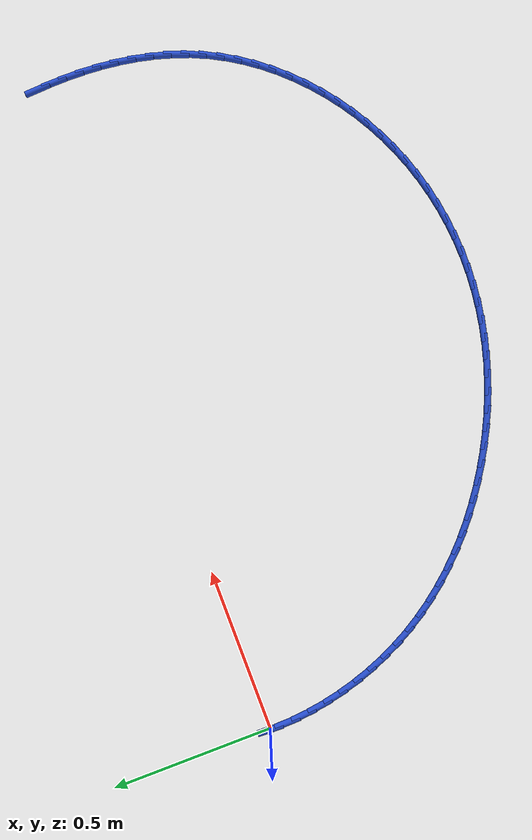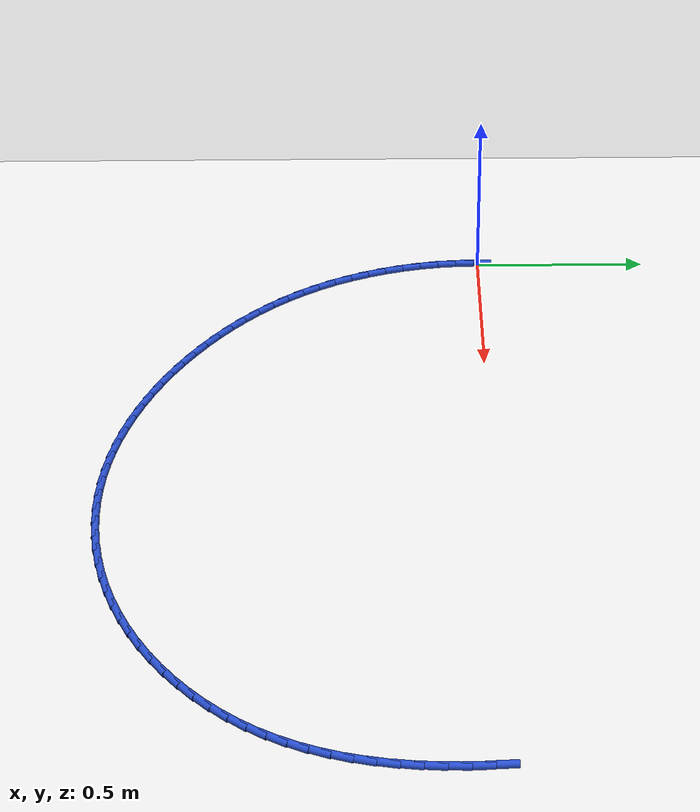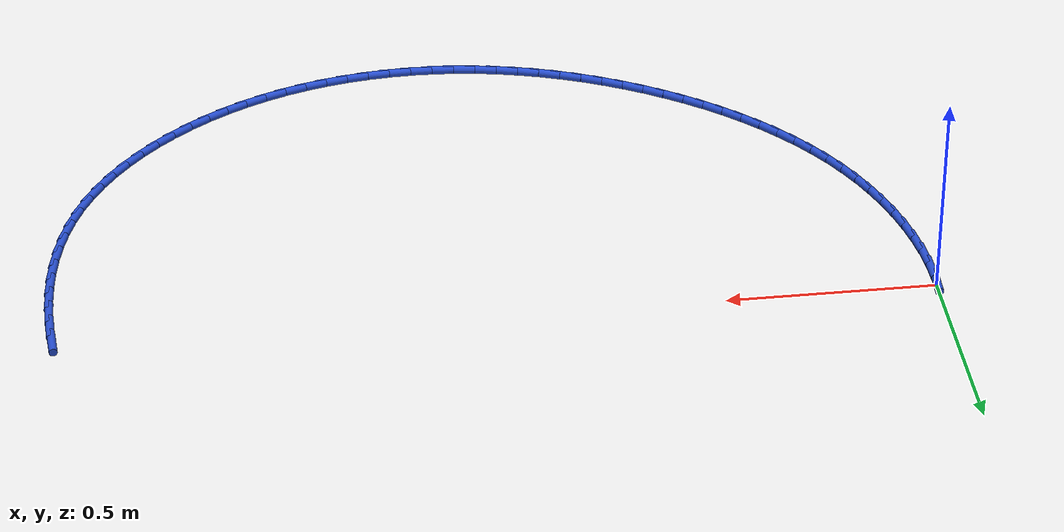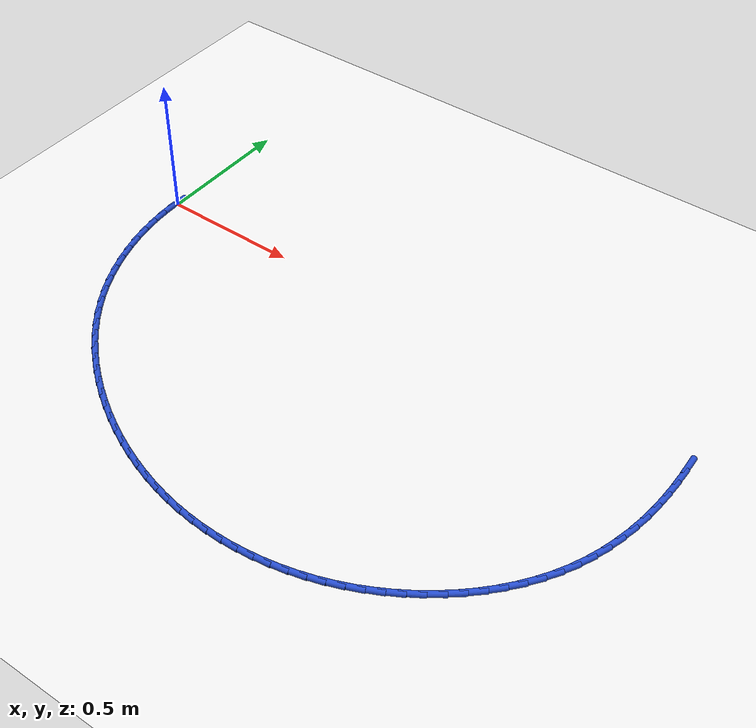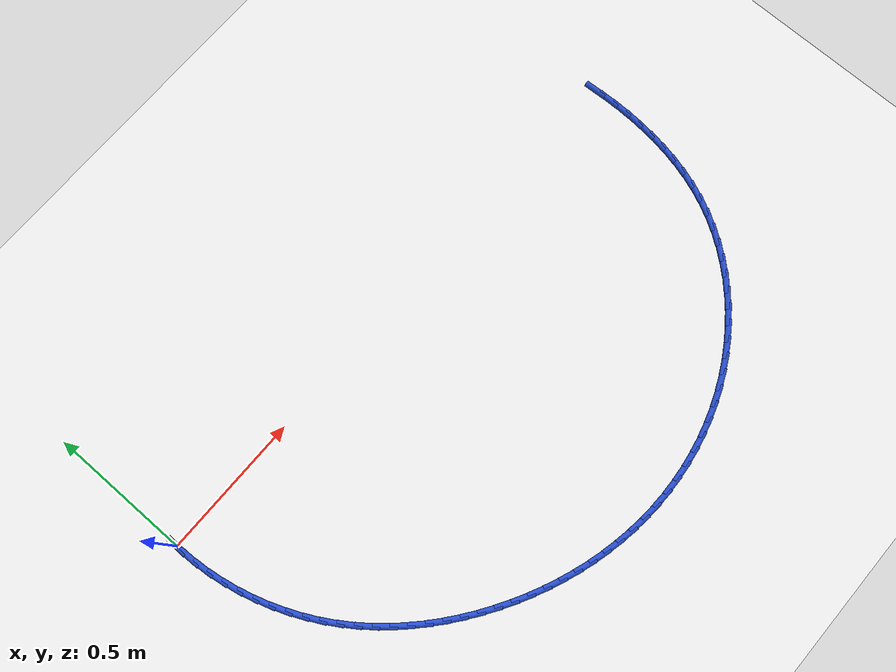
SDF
<sdf version="1.6">
 <world name="default">
  <model name="ground_plane">
   <static>1</static>
   <link name="link">
    <collision name="collision">
     <geometry><plane><normal>0 0 1</normal><size>100 100</size></plane></geometry>
     <surface><friction><ode><mu>100</mu><mu2>50</mu2></ode></friction></surface>
    </collision>
    <visual name="visual">
     <cast_shadows>0</cast_shadows>
     <geometry><plane><normal>0 0 1</normal><size>100 100</size></plane></geometry>
     <material>
      <script><uri>file://media/materials/scripts/gazebo.material</uri><name>Gazebo/WhiteGlow</name></script>
     </material>
    </visual>
   </link>
  </model>
  <model name="line">
   <link name="link_60">
    <pose>2.0639521369654563 -0.022828106876039908 0.01 0 1.57 -1.5217995421344748</pose>
    <collision name="collision">
     <geometry><cylinder><radius>0.01</radius><length>0.08</length></cylinder></geometry>
    </collision>
    <visual name="visual">
     <material>
      <script><name>Gazebo/Blue</name><uri>file://media/materials/scripts/gazebo.material</uri></script>
     </material>
     <geometry><cylinder><radius>0.01</radius><length>0.08</length></cylinder></geometry>
    </visual>
   </link>
   <link name="link_61">
    <pose>2.066658352704501 -0.07801641812311876 0.01 0 1.57 -1.5615450391501537</pose>
    <collision name="collision">
     <geometry><cylinder><radius>0.01</radius><length>0.08</length></cylinder></geometry>
    </collision>
    <visual name="visual">
     <material>
      <script><name>Gazebo/Blue</name><uri>file://media/materials/scripts/gazebo.material</uri></script>
     </material>
     <geometry><cylinder><radius>0.01</radius><length>0.08</length></cylinder></geometry>
    </visual>
   </link>
   <link name="link_62">
    <pose>2.067170182742487 -0.13334011528539383 0.01 0 1.57 1.5375343882589414</pose>
    <collision name="collision">
     <geometry><cylinder><radius>0.01</radius><length>0.08</length></cylinder></geometry>
    </collision>
    <visual name="visual">
     <material>
      <script><name>Gazebo/Blue</name><uri>file://media/materials/scripts/gazebo.material</uri></script>
     </material>
     <geometry><cylinder><radius>0.01</radius><length>0.08</length></cylinder></geometry>
    </visual>
   </link>
   <link name="link_63">
    <pose>2.0653314518313457 -0.18860005636797023 0.01 0 1.57 1.4919473986028025</pose>
    <collision name="collision">
     <geometry><cylinder><radius>0.01</radius><length>0.08</length></cylinder></geometry>
    </collision>
    <visual name="visual">
     <material>
      <script><name>Gazebo/Blue</name><uri>file://media/materials/scripts/gazebo.material</uri></script>
     </material>
     <geometry><cylinder><radius>0.01</radius><length>0.08</length></cylinder></geometry>
    </visual>
   </link>
   <link name="link_64">
    <pose>2.0609859847230103 -0.24359709937595045 0.01 0 1.57 1.442985299147442</pose>
    <collision name="collision">
     <geometry><cylinder><radius>0.01</radius><length>0.08</length></cylinder></geometry>
    </collision>
    <visual name="visual">
     <material>
      <script><name>Gazebo/Blue</name><uri>file://media/materials/scripts/gazebo.material</uri></script>
     </material>
     <geometry><cylinder><radius>0.01</radius><length>0.08</length></cylinder></geometry>
    </visual>
   </link>
   <link name="link_65">
    <pose>2.0539776061694153 -0.2981321023144396 0.01 0 1.57 1.3903638705153891</pose>
    <collision name="collision">
     <geometry><cylinder><radius>0.01</radius><length>0.08</length></cylinder></geometry>
    </collision>
    <visual name="visual">
     <material>
      <script><name>Gazebo/Blue</name><uri>file://media/materials/scripts/gazebo.material</uri></script>
     </material>
     <geometry><cylinder><radius>0.01</radius><length>0.08</length></cylinder></geometry>
    </visual>
   </link>
   <link name="link_66">
    <pose>2.0441501409224916 -0.3520059231885426 0.01 0 1.57 1.3338340996122688</pose>
    <collision name="collision">
     <geometry><cylinder><radius>0.01</radius><length>0.08</length></cylinder></geometry>
    </collision>
    <visual name="visual">
     <material>
      <script><name>Gazebo/Blue</name><uri>file://media/materials/scripts/gazebo.material</uri></script>
     </material>
     <geometry><cylinder><radius>0.01</radius><length>0.08</length></cylinder></geometry>
    </visual>
   </link>
   <link name="link_67">
    <pose>2.0313474137341747 -0.4050194200033624 0.01 0 1.57 1.273206542059458</pose>
    <collision name="collision">
     <geometry><cylinder><radius>0.01</radius><length>0.08</length></cylinder></geometry>
    </collision>
    <visual name="visual">
     <material>
      <script><name>Gazebo/Blue</name><uri>file://media/materials/scripts/gazebo.material</uri></script>
     </material>
     <geometry><cylinder><radius>0.01</radius><length>0.08</length></cylinder></geometry>
    </visual>
   </link>
   <link name="link_68">
    <pose>2.0154132493563957 -0.4569734507640036 0.01 0 1.57 1.2083818001034274</pose>
    <collision name="collision">
     <geometry><cylinder><radius>0.01</radius><length>0.08</length></cylinder></geometry>
    </collision>
    <visual name="visual">
     <material>
      <script><name>Gazebo/Blue</name><uri>file://media/materials/scripts/gazebo.material</uri></script>
     </material>
     <geometry><cylinder><radius>0.01</radius><length>0.08</length></cylinder></geometry>
    </visual>
   </link>
   <link name="link_69">
    <pose>1.996191472541089 -0.5076688734755707 0.01 0 1.57 1.1393856421164037</pose>
    <collision name="collision">
     <geometry><cylinder><radius>0.01</radius><length>0.08</length></cylinder></geometry>
    </collision>
    <visual name="visual">
     <material>
      <script><name>Gazebo/Blue</name><uri>file://media/materials/scripts/gazebo.material</uri></script>
     </material>
     <geometry><cylinder><radius>0.01</radius><length>0.08</length></cylinder></geometry>
    </visual>
   </link>
   <link name="link_70">
    <pose>1.9735259170337793 -0.5569065480162398 0.01 0 1.57 1.0677319652294905</pose>
    <collision name="collision">
     <geometry><cylinder><radius>0.01</radius><length>0.08</length></cylinder></geometry>
    </collision>
    <visual name="visual">
     <material>
      <script><name>Gazebo/Blue</name><uri>file://media/materials/scripts/gazebo.material</uri></script>
     </material>
     <geometry><cylinder><radius>0.01</radius><length>0.08</length></cylinder></geometry>
    </visual>
   </link>
   <link name="link_71">
    <pose>1.9473343087804755 -0.6045027235953876 0.01 0 1.57 0.9980854540625889</pose>
    <collision name="collision">
     <geometry><cylinder><radius>0.01</radius><length>0.08</length></cylinder></geometry>
    </collision>
    <visual name="visual">
     <material>
      <script><name>Gazebo/Blue</name><uri>file://media/materials/scripts/gazebo.material</uri></script>
     </material>
     <geometry><cylinder><radius>0.01</radius><length>0.08</length></cylinder></geometry>
    </visual>
   </link>
   <link name="link_72">
    <pose>1.917787263001686 -0.6503263179960358 0.01 0 1.57 0.9312487487370169</pose>
    <collision name="collision">
     <geometry><cylinder><radius>0.01</radius><length>0.08</length></cylinder></geometry>
    </collision>
    <visual name="visual">
     <material>
      <script><name>Gazebo/Blue</name><uri>file://media/materials/scripts/gazebo.material</uri></script>
     </material>
     <geometry><cylinder><radius>0.01</radius><length>0.08</length></cylinder></geometry>
    </visual>
   </link>
   <link name="link_73">
    <pose>1.8851094505059534 -0.6942575070141227 0.01 0 1.57 0.8669564151430771</pose>
    <collision name="collision">
     <geometry><cylinder><radius>0.01</radius><length>0.08</length></cylinder></geometry>
    </collision>
    <visual name="visual">
     <material>
      <script><name>Gazebo/Blue</name><uri>file://media/materials/scripts/gazebo.material</uri></script>
     </material>
     <geometry><cylinder><radius>0.01</radius><length>0.08</length></cylinder></geometry>
    </visual>
   </link>
   <link name="link_74">
    <pose>1.8495255421018204 -0.7361764664455881 0.01 0 1.57 0.8048899736424296</pose>
    <collision name="collision">
     <geometry><cylinder><radius>0.01</radius><length>0.08</length></cylinder></geometry>
    </collision>
    <visual name="visual">
     <material>
      <script><name>Gazebo/Blue</name><uri>file://media/materials/scripts/gazebo.material</uri></script>
     </material>
     <geometry><cylinder><radius>0.01</radius><length>0.08</length></cylinder></geometry>
    </visual>
   </link>
   <link name="link_75">
    <pose>1.8112602085978307 -0.77596337208637 0.01 0 1.57 0.7446951564046369</pose>
    <collision name="collision">
     <geometry><cylinder><radius>0.01</radius><length>0.08</length></cylinder></geometry>
    </collision>
    <visual name="visual">
     <material>
      <script><name>Gazebo/Blue</name><uri>file://media/materials/scripts/gazebo.material</uri></script>
     </material>
     <geometry><cylinder><radius>0.01</radius><length>0.08</length></cylinder></geometry>
    </visual>
   </link>
   <link name="link_76">
    <pose>1.7705381208025255 -0.8134983997324073 0.01 0 1.57 0.6859944633395849</pose>
    <collision name="collision">
     <geometry><cylinder><radius>0.01</radius><length>0.08</length></cylinder></geometry>
    </collision>
    <visual name="visual">
     <material>
      <script><name>Gazebo/Blue</name><uri>file://media/materials/scripts/gazebo.material</uri></script>
     </material>
     <geometry><cylinder><radius>0.01</radius><length>0.08</length></cylinder></geometry>
    </visual>
   </link>
   <link name="link_77">
    <pose>1.727583949524448 -0.8486617251796396 0.01 0 1.57 0.6283956231616549</pose>
    <collision name="collision">
     <geometry><cylinder><radius>0.01</radius><length>0.08</length></cylinder></geometry>
    </collision>
    <visual name="visual">
     <material>
      <script><name>Gazebo/Blue</name><uri>file://media/materials/scripts/gazebo.material</uri></script>
     </material>
     <geometry><cylinder><radius>0.01</radius><length>0.08</length></cylinder></geometry>
    </visual>
   </link>
   <link name="link_78">
    <pose>1.68262236557214 -0.8813335242240057 0.01 0 1.57 0.5714967786450099</pose>
    <collision name="collision">
     <geometry><cylinder><radius>0.01</radius><length>0.08</length></cylinder></geometry>
    </collision>
    <visual name="visual">
     <material>
      <script><name>Gazebo/Blue</name><uri>file://media/materials/scripts/gazebo.material</uri></script>
     </material>
     <geometry><cylinder><radius>0.01</radius><length>0.08</length></cylinder></geometry>
    </visual>
   </link>
   <link name="link_79">
    <pose>1.6358780397541453 -0.9113939726614438 0.01 0 1.57 0.5148892603801294</pose>
    <collision name="collision">
     <geometry><cylinder><radius>0.01</radius><length>0.08</length></cylinder></geometry>
    </collision>
    <visual name="visual">
     <material>
      <script><name>Gazebo/Blue</name><uri>file://media/materials/scripts/gazebo.material</uri></script>
     </material>
     <geometry><cylinder><radius>0.01</radius><length>0.08</length></cylinder></geometry>
    </visual>
   </link>
   <link name="link_80">
    <pose>1.5875756428790062 -0.9387232462878929 0.01 0 1.57 0.4581587871532892</pose>
    <collision name="collision">
     <geometry><cylinder><radius>0.01</radius><length>0.08</length></cylinder></geometry>
    </collision>
    <visual name="visual">
     <material>
      <script><name>Gazebo/Blue</name><uri>file://media/materials/scripts/gazebo.material</uri></script>
     </material>
     <geometry><cylinder><radius>0.01</radius><length>0.08</length></cylinder></geometry>
    </visual>
   </link>
   <link name="link_81">
    <pose>1.5379398457147946 -0.9632015209670387 0.01 0 1.57 0.4011742782482774</pose>
    <collision name="collision">
     <geometry><cylinder><radius>0.01</radius><length>0.08</length></cylinder></geometry>
    </collision>
    <visual name="visual">
     <material>
      <script><name>Gazebo/Blue</name><uri>file://media/materials/scripts/gazebo.material</uri></script>
     </material>
     <geometry><cylinder><radius>0.01</radius><length>0.08</length></cylinder></geometry>
    </visual>
   </link>
   <link name="link_82">
    <pose>1.4871815053550728 -0.9847320969460386 0.01 0 1.57 0.344776268759962</pose>
    <collision name="collision">
     <geometry><cylinder><radius>0.01</radius><length>0.08</length></cylinder></geometry>
    </collision>
    <visual name="visual">
     <material>
      <script><name>Gazebo/Blue</name><uri>file://media/materials/scripts/gazebo.material</uri></script>
     </material>
     <geometry><cylinder><radius>0.01</radius><length>0.08</length></cylinder></geometry>
    </visual>
   </link>
   <link name="link_83">
    <pose>1.4354585782850864 -1.0033068312098983 0.01 0 1.57 0.28917274510251023</pose>
    <collision name="collision">
     <geometry><cylinder><radius>0.01</radius><length>0.08</length></cylinder></geometry>
    </collision>
    <visual name="visual">
     <material>
      <script><name>Gazebo/Blue</name><uri>file://media/materials/scripts/gazebo.material</uri></script>
     </material>
     <geometry><cylinder><radius>0.01</radius><length>0.08</length></cylinder></geometry>
    </visual>
   </link>
   <link name="link_84">
    <pose>1.3829163594929013 -1.0189387763578586 0.01 0 1.57 0.23430649543763804</pose>
    <collision name="collision">
     <geometry><cylinder><radius>0.01</radius><length>0.08</length></cylinder></geometry>
    </collision>
    <visual name="visual">
     <material>
      <script><name>Gazebo/Blue</name><uri>file://media/materials/scripts/gazebo.material</uri></script>
     </material>
     <geometry><cylinder><radius>0.01</radius><length>0.08</length></cylinder></geometry>
    </visual>
   </link>
   <link name="link_85">
    <pose>1.329700143966582 -1.0316409849891601 0.01 0 1.57 0.18010062801760457</pose>
    <collision name="collision">
     <geometry><cylinder><radius>0.01</radius><length>0.08</length></cylinder></geometry>
    </collision>
    <visual name="visual">
     <material>
      <script><name>Gazebo/Blue</name><uri>file://media/materials/scripts/gazebo.material</uri></script>
     </material>
     <geometry><cylinder><radius>0.01</radius><length>0.08</length></cylinder></geometry>
    </visual>
   </link>
   <link name="link_86">
    <pose>1.275955226694196 -1.0414265097030437 0.01 0 1.57 0.12646184584467754</pose>
    <collision name="collision">
     <geometry><cylinder><radius>0.01</radius><length>0.08</length></cylinder></geometry>
    </collision>
    <visual name="visual">
     <material>
      <script><name>Gazebo/Blue</name><uri>file://media/materials/scripts/gazebo.material</uri></script>
     </material>
     <geometry><cylinder><radius>0.01</radius><length>0.08</length></cylinder></geometry>
    </visual>
   </link>
   <link name="link_87">
    <pose>1.2218269026638082 -1.0483084030987506 0.01 0 1.57 0.07328357952338349</pose>
    <collision name="collision">
     <geometry><cylinder><radius>0.01</radius><length>0.08</length></cylinder></geometry>
    </collision>
    <visual name="visual">
     <material>
      <script><name>Gazebo/Blue</name><uri>file://media/materials/scripts/gazebo.material</uri></script>
     </material>
     <geometry><cylinder><radius>0.01</radius><length>0.08</length></cylinder></geometry>
    </visual>
   </link>
   <link name="link_88">
    <pose>1.1674604668634834 -1.0522997177755202 0.01 0 1.57 0.02044892746733857</pose>
    <collision name="collision">
     <geometry><cylinder><radius>0.01</radius><length>0.08</length></cylinder></geometry>
    </collision>
    <visual name="visual">
     <material>
      <script><name>Gazebo/Blue</name><uri>file://media/materials/scripts/gazebo.material</uri></script>
     </material>
     <geometry><cylinder><radius>0.01</radius><length>0.08</length></cylinder></geometry>
    </visual>
   </link>
   <link name="link_89">
    <pose>1.1130012142812875 -1.0534135063325945 0.01 0 1.57 -0.032166603078090016</pose>
    <collision name="collision">
     <geometry><cylinder><radius>0.01</radius><length>0.08</length></cylinder></geometry>
    </collision>
    <visual name="visual">
     <material>
      <script><name>Gazebo/Blue</name><uri>file://media/materials/scripts/gazebo.material</uri></script>
     </material>
     <geometry><cylinder><radius>0.01</radius><length>0.08</length></cylinder></geometry>
    </visual>
   </link>
   <link name="link_90">
    <pose>1.0585944399052871 -1.0516628213692136 0.01 0 1.57 -0.08454719859882719</pose>
    <collision name="collision">
     <geometry><cylinder><radius>0.01</radius><length>0.08</length></cylinder></geometry>
    </collision>
    <visual name="visual">
     <material>
      <script><name>Gazebo/Blue</name><uri>file://media/materials/scripts/gazebo.material</uri></script>
     </material>
     <geometry><cylinder><radius>0.01</radius><length>0.08</length></cylinder></geometry>
    </visual>
   </link>
   <link name="link_91">
    <pose>1.0043801399297079 -1.0470682011627552 0.01 0 1.57 -0.1358823271964727</pose>
    <collision name="collision">
     <geometry><cylinder><radius>0.01</radius><length>0.08</length></cylinder></geometry>
    </collision>
    <visual name="visual">
     <material>
      <script><name>Gazebo/Blue</name><uri>file://media/materials/scripts/gazebo.material</uri></script>
     </material>
     <geometry><cylinder><radius>0.01</radius><length>0.08</length></cylinder></geometry>
    </visual>
   </link>
   <link name="link_92">
    <pose>0.9504653750465438 -1.039696712422619 0.01 0 1.57 -0.1858585333099371</pose>
    <collision name="collision">
     <geometry><cylinder><radius>0.01</radius><length>0.08</length></cylinder></geometry>
    </collision>
    <visual name="visual">
     <material>
      <script><name>Gazebo/Blue</name><uri>file://media/materials/scripts/gazebo.material</uri></script>
     </material>
     <geometry><cylinder><radius>0.01</radius><length>0.08</length></cylinder></geometry>
    </visual>
   </link>
   <link name="link_93">
    <pose>0.8969445710038078 -1.0296332714154395 0.01 0 1.57 -0.23452228375335954</pose>
    <collision name="collision">
     <geometry><cylinder><radius>0.01</radius><length>0.08</length></cylinder></geometry>
    </collision>
    <visual name="visual">
     <material>
      <script><name>Gazebo/Blue</name><uri>file://media/materials/scripts/gazebo.material</uri></script>
     </material>
     <geometry><cylinder><radius>0.01</radius><length>0.08</length></cylinder></geometry>
    </visual>
   </link>
   <link name="link_94">
    <pose>0.8439121276027212 -1.0169628310632393 0.01 0 1.57 -0.28194221446784995</pose>
    <collision name="collision">
     <geometry><cylinder><radius>0.01</radius><length>0.08</length></cylinder></geometry>
    </collision>
    <visual name="visual">
     <material>
      <script><name>Gazebo/Blue</name><uri>file://media/materials/scripts/gazebo.material</uri></script>
     </material>
     <geometry><cylinder><radius>0.01</radius><length>0.08</length></cylinder></geometry>
    </visual>
   </link>
   <link name="link_95">
    <pose>0.7914624446445032 -1.001770344288041 0.01 0 1.57 -0.3282045643421684</pose>
    <collision name="collision">
     <geometry><cylinder><radius>0.01</radius><length>0.08</length></cylinder></geometry>
    </collision>
    <visual name="visual">
     <material>
      <script><name>Gazebo/Blue</name><uri>file://media/materials/scripts/gazebo.material</uri></script>
     </material>
     <geometry><cylinder><radius>0.01</radius><length>0.08</length></cylinder></geometry>
    </visual>
   </link>
   <link name="link_96">
    <pose>0.7396899219303734 -0.9841407640118663 0.01 0 1.57 -0.37340972896651387</pose>
    <collision name="collision">
     <geometry><cylinder><radius>0.01</radius><length>0.08</length></cylinder></geometry>
    </collision>
    <visual name="visual">
     <material>
      <script><name>Gazebo/Blue</name><uri>file://media/materials/scripts/gazebo.material</uri></script>
     </material>
     <geometry><cylinder><radius>0.01</radius><length>0.08</length></cylinder></geometry>
    </visual>
   </link>
   <link name="link_97">
    <pose>0.6886889592615535 -0.9641590431567388 0.01 0 1.57 -0.4176692967515579</pose>
    <collision name="collision">
     <geometry><cylinder><radius>0.01</radius><length>0.08</length></cylinder></geometry>
    </collision>
    <visual name="visual">
     <material>
      <script><name>Gazebo/Blue</name><uri>file://media/materials/scripts/gazebo.material</uri></script>
     </material>
     <geometry><cylinder><radius>0.01</radius><length>0.08</length></cylinder></geometry>
    </visual>
   </link>
   <link name="link_98">
    <pose>0.6385539564392623 -0.9419101346446807 0.01 0 1.57 -0.46110358787484756</pose>
    <collision name="collision">
     <geometry><cylinder><radius>0.01</radius><length>0.08</length></cylinder></geometry>
    </collision>
    <visual name="visual">
     <material>
      <script><name>Gazebo/Blue</name><uri>file://media/materials/scripts/gazebo.material</uri></script>
     </material>
     <geometry><cylinder><radius>0.01</radius><length>0.08</length></cylinder></geometry>
    </visual>
   </link>
   <link name="link_99">
    <pose>0.5893793132647202 -0.917478991397714 0.01 0 1.57 -0.5038396783879833</pose>
    <collision name="collision">
     <geometry><cylinder><radius>0.01</radius><length>0.08</length></cylinder></geometry>
    </collision>
    <visual name="visual">
     <material>
      <script><name>Gazebo/Blue</name><uri>file://media/materials/scripts/gazebo.material</uri></script>
     </material>
     <geometry><cylinder><radius>0.01</radius><length>0.08</length></cylinder></geometry>
    </visual>
   </link>
   <link name="link_100">
    <pose>0.5412594295391464 -0.8909505663378611 0.01 0 1.57 -0.5460103672697867</pose>
    <collision name="collision">
     <geometry><cylinder><radius>0.01</radius><length>0.08</length></cylinder></geometry>
    </collision>
    <visual name="visual">
     <material>
      <script><name>Gazebo/Blue</name><uri>file://media/materials/scripts/gazebo.material</uri></script>
     </material>
     <geometry><cylinder><radius>0.01</radius><length>0.08</length></cylinder></geometry>
    </visual>
   </link>
   <link name="link_101">
    <pose>0.4942887235301709 -0.8624097914225928 0.01 0 1.57 -0.5881336797946369</pose>
    <collision name="collision">
     <geometry><cylinder><radius>0.01</radius><length>0.08</length></cylinder></geometry>
    </collision>
    <visual name="visual">
     <material>
      <script><name>Gazebo/Blue</name><uri>file://media/materials/scripts/gazebo.material</uri></script>
     </material>
     <geometry><cylinder><radius>0.01</radius><length>0.08</length></cylinder></geometry>
    </visual>
   </link>
   <link name="link_102">
    <pose>0.4485756000054932 -0.8319257200096338 0.01 0 1.57 -0.6314224216644426</pose>
    <collision name="collision">
     <geometry><cylinder><radius>0.01</radius><length>0.08</length></cylinder></geometry>
    </collision>
    <visual name="visual">
     <material>
      <script><name>Gazebo/Blue</name><uri>file://media/materials/scripts/gazebo.material</uri></script>
     </material>
     <geometry><cylinder><radius>0.01</radius><length>0.08</length></cylinder></geometry>
    </visual>
   </link>
   <link name="link_103">
    <pose>0.4042673319192158 -0.799523279165531 0.01 0 1.57 -0.6762216306048613</pose>
    <collision name="collision">
     <geometry><cylinder><radius>0.01</radius><length>0.08</length></cylinder></geometry>
    </collision>
    <visual name="visual">
     <material>
      <script><name>Gazebo/Blue</name><uri>file://media/materials/scripts/gazebo.material</uri></script>
     </material>
     <geometry><cylinder><radius>0.01</radius><length>0.08</length></cylinder></geometry>
    </visual>
   </link>
   <link name="link_104">
    <pose>0.36151788967553217 -0.7652197924728436 0.01 0 1.57 -0.7226833775590807</pose>
    <collision name="collision">
     <geometry><cylinder><radius>0.01</radius><length>0.08</length></cylinder></geometry>
    </collision>
    <visual name="visual">
     <material>
      <script><name>Gazebo/Blue</name><uri>file://media/materials/scripts/gazebo.material</uri></script>
     </material>
     <geometry><cylinder><radius>0.01</radius><length>0.08</length></cylinder></geometry>
    </visual>
   </link>
   <link name="link_105">
    <pose>0.3204812436786379 -0.7290325835141326 0.01 0 1.57 -0.7709440897867383</pose>
    <collision name="collision">
     <geometry><cylinder><radius>0.01</radius><length>0.08</length></cylinder></geometry>
    </collision>
    <visual name="visual">
     <material>
      <script><name>Gazebo/Blue</name><uri>file://media/materials/scripts/gazebo.material</uri></script>
     </material>
     <geometry><cylinder><radius>0.01</radius><length>0.08</length></cylinder></geometry>
    </visual>
   </link>
   <link name="link_106">
    <pose>0.28131136433272674 -0.6909789758719579 0.01 0 1.57 -0.8211191756833792</pose>
    <collision name="collision">
     <geometry><cylinder><radius>0.01</radius><length>0.08</length></cylinder></geometry>
    </collision>
    <visual name="visual">
     <material>
      <script><name>Gazebo/Blue</name><uri>file://media/materials/scripts/gazebo.material</uri></script>
     </material>
     <geometry><cylinder><radius>0.01</radius><length>0.08</length></cylinder></geometry>
    </visual>
   </link>
   <link name="link_107">
    <pose>0.2441622220419928 -0.651076293128879 0.01 0 1.57 -0.8732964862984126</pose>
    <collision name="collision">
     <geometry><cylinder><radius>0.01</radius><length>0.08</length></cylinder></geometry>
    </collision>
    <visual name="visual">
     <material>
      <script><name>Gazebo/Blue</name><uri>file://media/materials/scripts/gazebo.material</uri></script>
     </material>
     <geometry><cylinder><radius>0.01</radius><length>0.08</length></cylinder></geometry>
    </visual>
   </link>
   <link name="link_108">
    <pose>0.20918778721063014 -0.6093418588674556 0.01 0 1.57 -0.9275287758014691</pose>
    <collision name="collision">
     <geometry><cylinder><radius>0.01</radius><length>0.08</length></cylinder></geometry>
    </collision>
    <visual name="visual">
     <material>
      <script><name>Gazebo/Blue</name><uri>file://media/materials/scripts/gazebo.material</uri></script>
     </material>
     <geometry><cylinder><radius>0.01</radius><length>0.08</length></cylinder></geometry>
    </visual>
   </link>
   <link name="link_109">
    <pose>0.1765420302428339 -0.5657929966702486 0.01 0 1.57 -0.9838255152666558</pose>
    <collision name="collision">
     <geometry><cylinder><radius>0.01</radius><length>0.08</length></cylinder></geometry>
    </collision>
    <visual name="visual">
     <material>
      <script><name>Gazebo/Blue</name><uri>file://media/materials/scripts/gazebo.material</uri></script>
     </material>
     <geometry><cylinder><radius>0.01</radius><length>0.08</length></cylinder></geometry>
    </visual>
   </link>
   <link name="link_110">
    <pose>0.14637892154279794 -0.5204470301198177 0.01 0 1.57 -1.0420435688646315</pose>
    <collision name="collision">
     <geometry><cylinder><radius>0.01</radius><length>0.08</length></cylinder></geometry>
    </collision>
    <visual name="visual">
     <material>
      <script><name>Gazebo/Blue</name><uri>file://media/materials/scripts/gazebo.material</uri></script>
     </material>
     <geometry><cylinder><radius>0.01</radius><length>0.08</length></cylinder></geometry>
    </visual>
   </link>
   <link name="link_111">
    <pose>0.1188493600308939 -0.47332696165719773 0.01 0 1.57 -1.1003969939584848</pose>
    <collision name="collision">
     <geometry><cylinder><radius>0.01</radius><length>0.08</length></cylinder></geometry>
    </collision>
    <visual name="visual">
     <material>
      <script><name>Gazebo/Blue</name><uri>file://media/materials/scripts/gazebo.material</uri></script>
     </material>
     <geometry><cylinder><radius>0.01</radius><length>0.08</length></cylinder></geometry>
    </visual>
   </link>
   <link name="link_112">
    <pose>0.09405047036032455 -0.4245552168265446 0.01 0 1.57 -1.1575964140105852</pose>
    <collision name="collision">
     <geometry><cylinder><radius>0.01</radius><length>0.08</length></cylinder></geometry>
    </collision>
    <visual name="visual">
     <material>
      <script><name>Gazebo/Blue</name><uri>file://media/materials/scripts/gazebo.material</uri></script>
     </material>
     <geometry><cylinder><radius>0.01</radius><length>0.08</length></cylinder></geometry>
    </visual>
   </link>
   <link name="link_113">
    <pose>0.07203358050995057 -0.3743388945244512 0.01 0 1.57 -1.2138865962600196</pose>
    <collision name="collision">
     <geometry><cylinder><radius>0.01</radius><length>0.08</length></cylinder></geometry>
    </collision>
    <visual name="visual">
     <material>
      <script><name>Gazebo/Blue</name><uri>file://media/materials/scripts/gazebo.material</uri></script>
     </material>
     <geometry><cylinder><radius>0.01</radius><length>0.08</length></cylinder></geometry>
    </visual>
   </link>
   <link name="link_114">
    <pose>0.05284855540211929 -0.32288779868889933 0.01 0 1.57 -1.2695698484661737</pose>
    <collision name="collision">
     <geometry><cylinder><radius>0.01</radius><length>0.08</length></cylinder></geometry>
    </collision>
    <visual name="visual">
     <material>
      <script><name>Gazebo/Blue</name><uri>file://media/materials/scripts/gazebo.material</uri></script>
     </material>
     <geometry><cylinder><radius>0.01</radius><length>0.08</length></cylinder></geometry>
    </visual>
   </link>
   <link name="link_115">
    <pose>0.03654525995917823 -0.2704117332578713 0.01 0 1.57 -1.324954349466533</pose>
    <collision name="collision">
     <geometry><cylinder><radius>0.01</radius><length>0.08</length></cylinder></geometry>
    </collision>
    <visual name="visual">
     <material>
      <script><name>Gazebo/Blue</name><uri>file://media/materials/scripts/gazebo.material</uri></script>
     </material>
     <geometry><cylinder><radius>0.01</radius><length>0.08</length></cylinder></geometry>
    </visual>
   </link>
   <link name="link_116">
    <pose>0.02317355910347553 -0.2171205021693513 0.01 0 1.57 -1.380351610076721</pose>
    <collision name="collision">
     <geometry><cylinder><radius>0.01</radius><length>0.08</length></cylinder></geometry>
    </collision>
    <visual name="visual">
     <material>
      <script><name>Gazebo/Blue</name><uri>file://media/materials/scripts/gazebo.material</uri></script>
     </material>
     <geometry><cylinder><radius>0.01</radius><length>0.08</length></cylinder></geometry>
    </visual>
   </link>
   <link name="link_117">
    <pose>0.012783317757358663 -0.16322390936132147 0.01 0 1.57 -1.4360744296362353</pose>
    <collision name="collision">
     <geometry><cylinder><radius>0.01</radius><length>0.08</length></cylinder></geometry>
    </collision>
    <visual name="visual">
     <material>
      <script><name>Gazebo/Blue</name><uri>file://media/materials/scripts/gazebo.material</uri></script>
     </material>
     <geometry><cylinder><radius>0.01</radius><length>0.08</length></cylinder></geometry>
    </visual>
   </link>
   <link name="link_118">
    <pose>0.005424400843175303 -0.10893175877176453 0.01 0 1.57 -1.4924348663795914</pose>
    <collision name="collision">
     <geometry><cylinder><radius>0.01</radius><length>0.08</length></cylinder></geometry>
    </collision>
    <visual name="visual">
     <material>
      <script><name>Gazebo/Blue</name><uri>file://media/materials/scripts/gazebo.material</uri></script>
     </material>
     <geometry><cylinder><radius>0.01</radius><length>0.08</length></cylinder></geometry>
    </visual>
   </link>
   <link name="link_119">
    <pose>0.0011466732832731436 -0.054453854338662656 0.01 0 1.57 -1.54974173197064</pose>
    <collision name="collision">
     <geometry><cylinder><radius>0.01</radius><length>0.08</length></cylinder></geometry>
    </collision>
    <visual name="visual">
     <material>
      <script><name>Gazebo/Blue</name><uri>file://media/materials/scripts/gazebo.material</uri></script>
     </material>
     <geometry><cylinder><radius>0.01</radius><length>0.08</length></cylinder></geometry>
    </visual>
   </link>
   <link name="link_120">
    <pose>0.0 -1.3877787807814457e-16 0.01 0 1.57 1.5332955480706632</pose>
    <collision name="collision">
     <geometry><cylinder><radius>0.01</radius><length>0.08</length></cylinder></geometry>
    </collision>
    <visual name="visual">
     <material>
      <script><name>Gazebo/Blue</name><uri>file://media/materials/scripts/gazebo.material</uri></script>
     </material>
     <geometry><cylinder><radius>0.01</radius><length>0.08</length></cylinder></geometry>
    </visual>
   </link>
  </model>
 </world>
</sdf>
